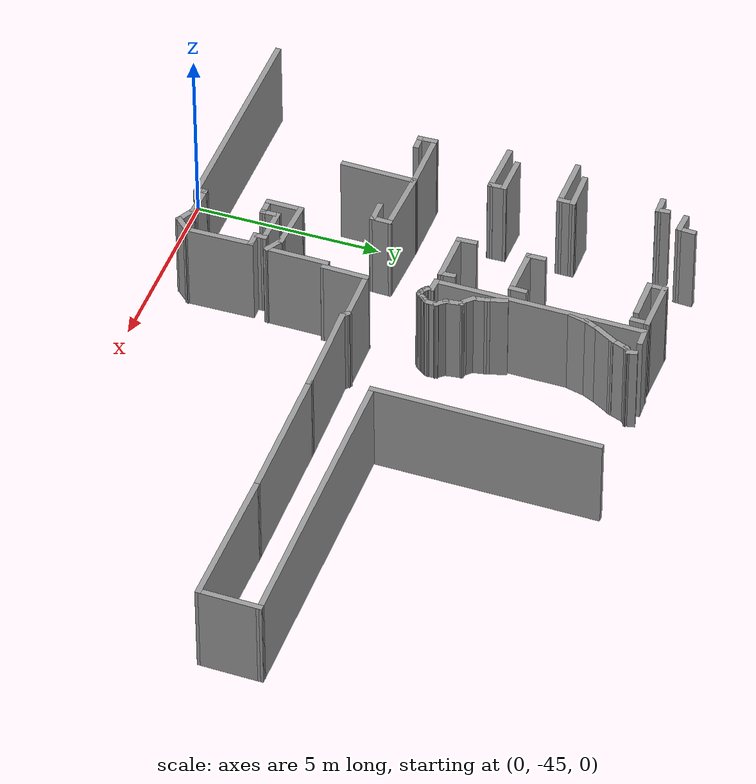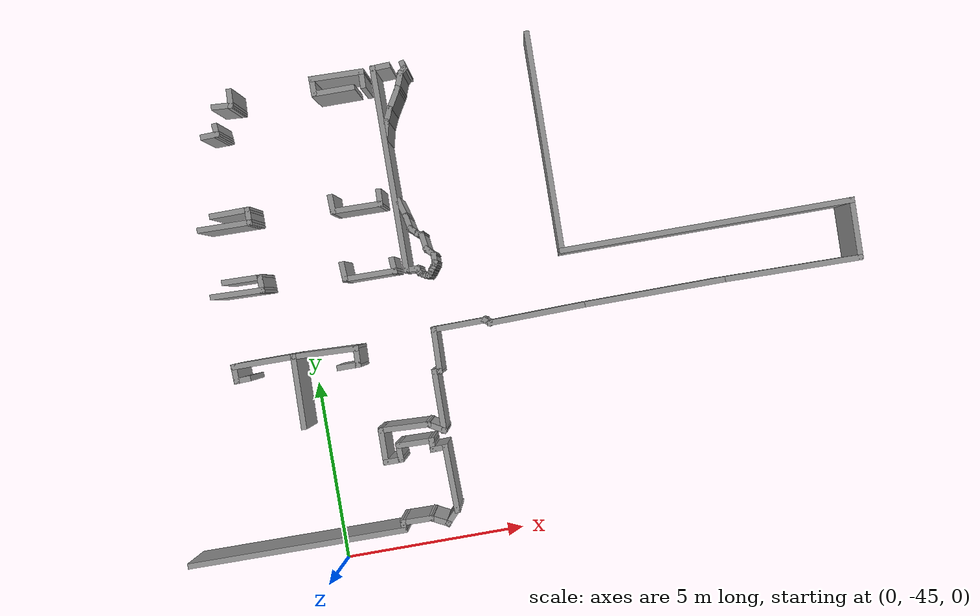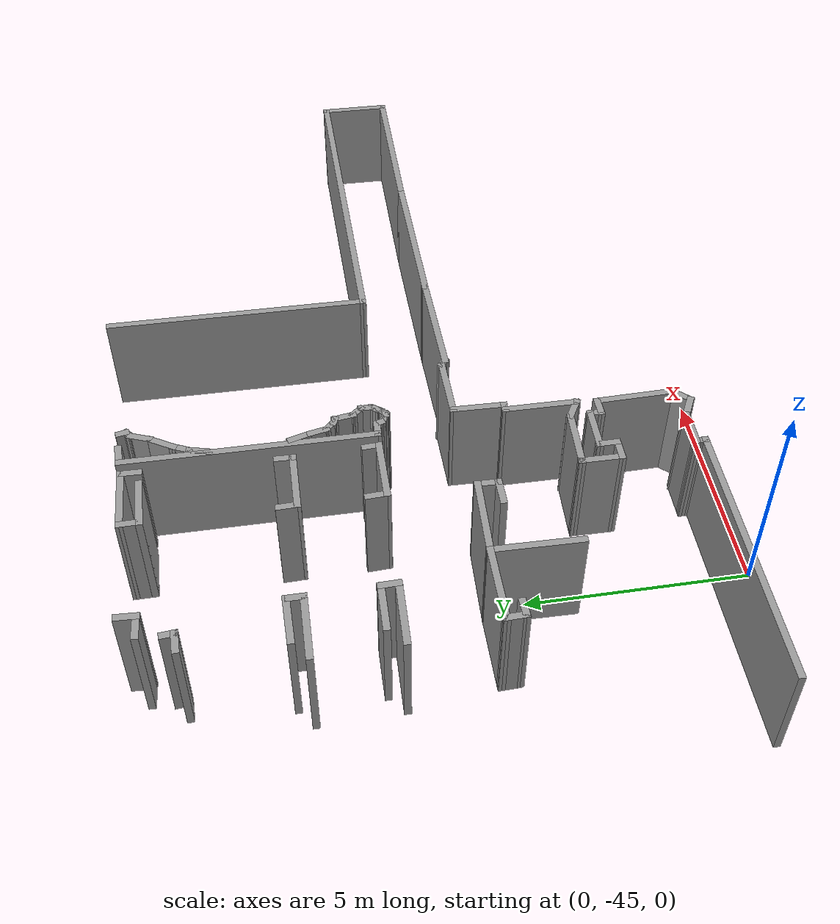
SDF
<sdf version="1.4">
 <model name="3ne_real">
  <pose>-14.229 -33.4428 0 0 -0 0</pose>
  <link name="Wall_100">
   <collision name="Wall_100_Collision">
    <geometry><box><size>0.304128 0.15 2.5</size></box></geometry>
    <pose>0 0 1.25 0 -0 0</pose>
   </collision>
   <visual name="Wall_100_Visual">
    <pose>0 0 1.25 0 -0 0</pose>
    <geometry><box><size>0.304128 0.15 2.5</size></box></geometry>
    <material>
     <script><uri>file://media/materials/scripts/gazebo.material</uri><name>Gazebo/Grey</name></script>
     <ambient>1 1 1 1</ambient>
    </material>
    <meta><layer>0</layer></meta>
   </visual>
   <pose>19.2826 -5.64368 0 0 -0 -0.682317</pose>
  </link>
  <link name="Wall_101">
   <collision name="Wall_101_Collision">
    <geometry><box><size>2.685 0.15 2.5</size></box></geometry>
    <pose>0 0 1.25 0 -0 0</pose>
   </collision>
   <visual name="Wall_101_Visual">
    <pose>0 0 1.25 0 -0 0</pose>
    <geometry><box><size>2.685 0.15 2.5</size></box></geometry>
    <material>
     <script><uri>file://media/materials/scripts/gazebo.material</uri><name>Gazebo/Grey</name></script>
     <ambient>1 1 1 1</ambient>
    </material>
    <meta><layer>0</layer></meta>
   </visual>
   <pose>20.6096 -5.66611 0 0 -0 0.020646</pose>
  </link>
  <link name="Wall_103">
   <collision name="Wall_103_Collision">
    <geometry><box><size>3.99219 0.15 2.5</size></box></geometry>
    <pose>0 0 1.25 0 -0 0</pose>
   </collision>
   <visual name="Wall_103_Visual">
    <pose>0 0 1.25 0 -0 0</pose>
    <geometry><box><size>3.99219 0.15 2.5</size></box></geometry>
    <material>
     <script><uri>file://media/materials/scripts/gazebo.material</uri><name>Gazebo/Grey</name></script>
     <ambient>1 1 1 1</ambient>
    </material>
    <meta><layer>0</layer></meta>
   </visual>
   <pose>23.7979 -5.62656 0 0 -0 0.006965</pose>
  </link>
  <link name="Wall_104">
   <collision name="Wall_104_Collision">
    <geometry><box><size>3.92745 0.15 2.5</size></box></geometry>
    <pose>0 0 1.25 0 -0 0</pose>
   </collision>
   <visual name="Wall_104_Visual">
    <pose>0 0 1.25 0 -0 0</pose>
    <geometry><box><size>3.92745 0.15 2.5</size></box></geometry>
    <material>
     <script><uri>file://media/materials/scripts/gazebo.material</uri><name>Gazebo/Grey</name></script>
     <ambient>1 1 1 1</ambient>
    </material>
    <meta><layer>0</layer></meta>
   </visual>
   <pose>27.6074 -5.63295 0 0 -0 -0.010471</pose>
  </link>
  <link name="Wall_105">
   <collision name="Wall_105_Collision">
    <geometry><box><size>1.71249 0.15 2.5</size></box></geometry>
    <pose>0 0 1.25 0 -0 0</pose>
   </collision>
   <visual name="Wall_105_Visual">
    <pose>0 0 1.25 0 -0 0</pose>
    <geometry><box><size>1.71249 0.15 2.5</size></box></geometry>
    <material>
     <script><uri>file://media/materials/scripts/gazebo.material</uri><name>Gazebo/Grey</name></script>
     <ambient>1 1 1 1</ambient>
    </material>
    <meta><layer>0</layer></meta>
   </visual>
   <pose>29.5108 -4.87162 0 0 -0 1.55181</pose>
  </link>
  <link name="Wall_106">
   <collision name="Wall_106_Collision">
    <geometry><box><size>8.07969 0.15 2.5</size></box></geometry>
    <pose>0 0 1.25 0 -0 0</pose>
   </collision>
   <visual name="Wall_106_Visual">
    <pose>0 0 1.25 0 -0 0</pose>
    <geometry><box><size>8.07969 0.15 2.5</size></box></geometry>
    <material>
     <script><uri>file://media/materials/scripts/gazebo.material</uri><name>Gazebo/Grey</name></script>
     <ambient>1 1 1 1</ambient>
    </material>
    <meta><layer>0</layer></meta>
   </visual>
   <pose>25.5608 -4.09546 0 0 -0 -3.14035</pose>
  </link>
  <link name="Wall_109">
   <collision name="Wall_109_Collision">
    <geometry><box><size>6.07338 0.15 2.5</size></box></geometry>
    <pose>0 0 1.25 0 -0 0</pose>
   </collision>
   <visual name="Wall_109_Visual">
    <pose>0 0 1.25 0 -0 0</pose>
    <geometry><box><size>6.07338 0.15 2.5</size></box></geometry>
    <material>
     <script><uri>file://media/materials/scripts/gazebo.material</uri><name>Gazebo/Grey</name></script>
     <ambient>1 1 1 1</ambient>
    </material>
    <meta><layer>0</layer></meta>
   </visual>
   <pose>21.6246 -1.13886 0 0 -0 1.56113</pose>
  </link>
  <link name="Wall_473">
   <collision name="Wall_473_Collision">
    <geometry><box><size>5.65263 0.15 2.5</size></box></geometry>
    <pose>0 0 1.25 0 -0 0</pose>
   </collision>
   <visual name="Wall_473_Visual">
    <pose>0 0 1.25 0 -0 0</pose>
    <geometry><box><size>5.65263 0.15 2.5</size></box></geometry>
    <material>
     <script><uri>file://media/materials/scripts/gazebo.material</uri><name>Gazebo/Grey</name></script>
     <ambient>1 1 1 1</ambient>
    </material>
    <meta><layer>0</layer></meta>
   </visual>
   <pose>17.3818 -1.14236 0 0 -0 -1.57623</pose>
  </link>
  <link name="Wall_475">
   <collision name="Wall_475_Collision">
    <geometry><box><size>0.449425 0.15 2.5</size></box></geometry>
    <pose>0 0 1.25 0 -0 0</pose>
   </collision>
   <visual name="Wall_475_Visual">
    <pose>0 0 1.25 0 -0 0</pose>
    <geometry><box><size>0.449425 0.15 2.5</size></box></geometry>
    <material>
     <script><uri>file://media/materials/scripts/gazebo.material</uri><name>Gazebo/Grey</name></script>
     <ambient>1 1 1 1</ambient>
    </material>
    <meta><layer>0</layer></meta>
   </visual>
   <pose>17.5164 -3.90111 0 0 -0 -0.049958</pose>
  </link>
  <link name="Wall_476">
   <collision name="Wall_476_Collision">
    <geometry><box><size>0.258856 0.15 2.5</size></box></geometry>
    <pose>0 0 1.25 0 -0 0</pose>
   </collision>
   <visual name="Wall_476_Visual">
    <pose>0 0 1.25 0 -0 0</pose>
    <geometry><box><size>0.258856 0.15 2.5</size></box></geometry>
    <material>
     <script><uri>file://media/materials/scripts/gazebo.material</uri><name>Gazebo/Grey</name></script>
     <ambient>1 1 1 1</ambient>
    </material>
    <meta><layer>0</layer></meta>
   </visual>
   <pose>17.6809 -3.96092 0 0 -0 -1.2925</pose>
  </link>
  <link name="Wall_477">
   <collision name="Wall_477_Collision">
    <geometry><box><size>0.213438 0.15 2.5</size></box></geometry>
    <pose>0 0 1.25 0 -0 0</pose>
   </collision>
   <visual name="Wall_477_Visual">
    <pose>0 0 1.25 0 -0 0</pose>
    <geometry><box><size>0.213438 0.15 2.5</size></box></geometry>
    <material>
     <script><uri>file://media/materials/scripts/gazebo.material</uri><name>Gazebo/Grey</name></script>
     <ambient>1 1 1 1</ambient>
    </material>
    <meta><layer>0</layer></meta>
   </visual>
   <pose>17.7182 -4.03569 0 0 -0 -0.785398</pose>
  </link>
  <link name="Wall_478">
   <collision name="Wall_478_Collision">
    <geometry><box><size>0.21687 0.15 2.5</size></box></geometry>
    <pose>0 0 1.25 0 -0 0</pose>
   </collision>
   <visual name="Wall_478_Visual">
    <pose>0 0 1.25 0 -0 0</pose>
    <geometry><box><size>0.21687 0.15 2.5</size></box></geometry>
    <material>
     <script><uri>file://media/materials/scripts/gazebo.material</uri><name>Gazebo/Grey</name></script>
     <ambient>1 1 1 1</ambient>
    </material>
    <meta><layer>0</layer></meta>
   </visual>
   <pose>17.7706 -4.07307 0 0 -0 -0.463648</pose>
  </link>
  <link name="Wall_479">
   <collision name="Wall_479_Collision">
    <geometry><box><size>0.203912 0.15 2.5</size></box></geometry>
    <pose>0 0 1.25 0 -0 0</pose>
   </collision>
   <visual name="Wall_479_Visual">
    <pose>0 0 1.25 0 -0 0</pose>
    <geometry><box><size>0.203912 0.15 2.5</size></box></geometry>
    <material>
     <script><uri>file://media/materials/scripts/gazebo.material</uri><name>Gazebo/Grey</name></script>
     <ambient>1 1 1 1</ambient>
    </material>
    <meta><layer>0</layer></meta>
   </visual>
   <pose>17.8229 -4.10297 0 0 -0 -0.588003</pose>
  </link>
  <link name="Wall_480">
   <collision name="Wall_480_Collision">
    <geometry><box><size>0.197284 0.15 2.5</size></box></geometry>
    <pose>0 0 1.25 0 -0 0</pose>
   </collision>
   <visual name="Wall_480_Visual">
    <pose>0 0 1.25 0 -0 0</pose>
    <geometry><box><size>0.197284 0.15 2.5</size></box></geometry>
    <material>
     <script><uri>file://media/materials/scripts/gazebo.material</uri><name>Gazebo/Grey</name></script>
     <ambient>1 1 1 1</ambient>
    </material>
    <meta><layer>0</layer></meta>
   </visual>
   <pose>17.8678 -4.1254 0 0 -0 -0.321751</pose>
  </link>
  <link name="Wall_481">
   <collision name="Wall_481_Collision">
    <geometry><box><size>0.194858 0.15 2.5</size></box></geometry>
    <pose>0 0 1.25 0 -0 0</pose>
   </collision>
   <visual name="Wall_481_Visual">
    <pose>0 0 1.25 0 -0 0</pose>
    <geometry><box><size>0.194858 0.15 2.5</size></box></geometry>
    <material>
     <script><uri>file://media/materials/scripts/gazebo.material</uri><name>Gazebo/Grey</name></script>
     <ambient>1 1 1 1</ambient>
    </material>
    <meta><layer>0</layer></meta>
   </visual>
   <pose>17.9126 -4.13288 0 0 -0 0</pose>
  </link>
  <link name="Wall_482">
   <collision name="Wall_482_Collision">
    <geometry><box><size>0.192292 0.15 2.5</size></box></geometry>
    <pose>0 0 1.25 0 -0 0</pose>
   </collision>
   <visual name="Wall_482_Visual">
    <pose>0 0 1.25 0 -0 0</pose>
    <geometry><box><size>0.192292 0.15 2.5</size></box></geometry>
    <material>
     <script><uri>file://media/materials/scripts/gazebo.material</uri><name>Gazebo/Grey</name></script>
     <ambient>1 1 1 1</ambient>
    </material>
    <meta><layer>0</layer></meta>
   </visual>
   <pose>17.95 -4.11793 0 0 -0 0.785398</pose>
  </link>
  <link name="Wall_483">
   <collision name="Wall_483_Collision">
    <geometry><box><size>0.234585 0.15 2.5</size></box></geometry>
    <pose>0 0 1.25 0 -0 0</pose>
   </collision>
   <visual name="Wall_483_Visual">
    <pose>0 0 1.25 0 -0 0</pose>
    <geometry><box><size>0.234585 0.15 2.5</size></box></geometry>
    <material>
     <script><uri>file://media/materials/scripts/gazebo.material</uri><name>Gazebo/Grey</name></script>
     <ambient>1 1 1 1</ambient>
    </material>
    <meta><layer>0</layer></meta>
   </visual>
   <pose>17.9949 -4.07307 0 0 -0 0.785398</pose>
  </link>
  <link name="Wall_484">
   <collision name="Wall_484_Collision">
    <geometry><box><size>0.237188 0.15 2.5</size></box></geometry>
    <pose>0 0 1.25 0 -0 0</pose>
   </collision>
   <visual name="Wall_484_Visual">
    <pose>0 0 1.25 0 -0 0</pose>
    <geometry><box><size>0.237188 0.15 2.5</size></box></geometry>
    <material>
     <script><uri>file://media/materials/scripts/gazebo.material</uri><name>Gazebo/Grey</name></script>
     <ambient>1 1 1 1</ambient>
    </material>
    <meta><layer>0</layer></meta>
   </visual>
   <pose>18.0472 -4.00578 0 0 -0 1.03038</pose>
  </link>
  <link name="Wall_485">
   <collision name="Wall_485_Collision">
    <geometry><box><size>0.213438 0.15 2.5</size></box></geometry>
    <pose>0 0 1.25 0 -0 0</pose>
   </collision>
   <visual name="Wall_485_Visual">
    <pose>0 0 1.25 0 -0 0</pose>
    <geometry><box><size>0.213438 0.15 2.5</size></box></geometry>
    <material>
     <script><uri>file://media/materials/scripts/gazebo.material</uri><name>Gazebo/Grey</name></script>
     <ambient>1 1 1 1</ambient>
    </material>
    <meta><layer>0</layer></meta>
   </visual>
   <pose>18.0921 -3.94597 0 0 -0 0.785398</pose>
  </link>
  <link name="Wall_486">
   <collision name="Wall_486_Collision">
    <geometry><box><size>0.250305 0.15 2.5</size></box></geometry>
    <pose>0 0 1.25 0 -0 0</pose>
   </collision>
   <visual name="Wall_486_Visual">
    <pose>0 0 1.25 0 -0 0</pose>
    <geometry><box><size>0.250305 0.15 2.5</size></box></geometry>
    <material>
     <script><uri>file://media/materials/scripts/gazebo.material</uri><name>Gazebo/Grey</name></script>
     <ambient>1 1 1 1</ambient>
    </material>
    <meta><layer>0</layer></meta>
   </visual>
   <pose>18.1369 -3.87868 0 0 -0 1.10715</pose>
  </link>
  <link name="Wall_487">
   <collision name="Wall_487_Collision">
    <geometry><box><size>0.359336 0.15 2.5</size></box></geometry>
    <pose>0 0 1.25 0 -0 0</pose>
   </collision>
   <visual name="Wall_487_Visual">
    <pose>0 0 1.25 0 -0 0</pose>
    <geometry><box><size>0.359336 0.15 2.5</size></box></geometry>
    <material>
     <script><uri>file://media/materials/scripts/gazebo.material</uri><name>Gazebo/Grey</name></script>
     <ambient>1 1 1 1</ambient>
    </material>
    <meta><layer>0</layer></meta>
   </visual>
   <pose>18.1593 -3.72916 0 0 -0 1.5708</pose>
  </link>
  <link name="Wall_488">
   <collision name="Wall_488_Collision">
    <geometry><box><size>0.404633 0.15 2.5</size></box></geometry>
    <pose>0 0 1.25 0 -0 0</pose>
   </collision>
   <visual name="Wall_488_Visual">
    <pose>0 0 1.25 0 -0 0</pose>
    <geometry><box><size>0.404633 0.15 2.5</size></box></geometry>
    <material>
     <script><uri>file://media/materials/scripts/gazebo.material</uri><name>Gazebo/Grey</name></script>
     <ambient>1 1 1 1</ambient>
    </material>
    <meta><layer>0</layer></meta>
   </visual>
   <pose>18.0771 -3.5273 0 0 -0 2.27305</pose>
  </link>
  <link name="Wall_489">
   <collision name="Wall_489_Collision">
    <geometry><box><size>0.558126 0.15 2.5</size></box></geometry>
    <pose>0 0 1.25 0 -0 0</pose>
   </collision>
   <visual name="Wall_489_Visual">
    <pose>0 0 1.25 0 -0 0</pose>
    <geometry><box><size>0.558126 0.15 2.5</size></box></geometry>
    <material>
     <script><uri>file://media/materials/scripts/gazebo.material</uri><name>Gazebo/Grey</name></script>
     <ambient>1 1 1 1</ambient>
    </material>
    <meta><layer>0</layer></meta>
   </visual>
   <pose>17.965 -3.22825 0 0 -0 1.71788</pose>
  </link>
  <link name="Wall_490">
   <collision name="Wall_490_Collision">
    <geometry><box><size>0.263875 0.15 2.5</size></box></geometry>
    <pose>0 0 1.25 0 -0 0</pose>
   </collision>
   <visual name="Wall_490_Visual">
    <pose>0 0 1.25 0 -0 0</pose>
    <geometry><box><size>0.263875 0.15 2.5</size></box></geometry>
    <material>
     <script><uri>file://media/materials/scripts/gazebo.material</uri><name>Gazebo/Grey</name></script>
     <ambient>1 1 1 1</ambient>
    </material>
    <meta><layer>0</layer></meta>
   </visual>
   <pose>17.8827 -3.00396 0 0 -0 2.7367</pose>
  </link>
  <link name="Wall_491">
   <collision name="Wall_491_Collision">
    <geometry><box><size>0.382607 0.15 2.5</size></box></geometry>
    <pose>0 0 1.25 0 -0 0</pose>
   </collision>
   <visual name="Wall_491_Visual">
    <pose>0 0 1.25 0 -0 0</pose>
    <geometry><box><size>0.382607 0.15 2.5</size></box></geometry>
    <material>
     <script><uri>file://media/materials/scripts/gazebo.material</uri><name>Gazebo/Grey</name></script>
     <ambient>1 1 1 1</ambient>
    </material>
    <meta><layer>0</layer></meta>
   </visual>
   <pose>17.7482 -2.89929 0 0 -0 2.35619</pose>
  </link>
  <link name="Wall_492">
   <collision name="Wall_492_Collision">
    <geometry><box><size>0.516567 0.15 2.5</size></box></geometry>
    <pose>0 0 1.25 0 -0 0</pose>
   </collision>
   <visual name="Wall_492_Visual">
    <pose>0 0 1.25 0 -0 0</pose>
    <geometry><box><size>0.516567 0.15 2.5</size></box></geometry>
    <material>
     <script><uri>file://media/materials/scripts/gazebo.material</uri><name>Gazebo/Grey</name></script>
     <ambient>1 1 1 1</ambient>
    </material>
    <meta><layer>0</layer></meta>
   </visual>
   <pose>17.6285 -2.63762 0 0 -0 1.77619</pose>
  </link>
  <link name="Wall_493">
   <collision name="Wall_493_Collision">
    <geometry><box><size>0.599821 0.15 2.5</size></box></geometry>
    <pose>0 0 1.25 0 -0 0</pose>
   </collision>
   <visual name="Wall_493_Visual">
    <pose>0 0 1.25 0 -0 0</pose>
    <geometry><box><size>0.599821 0.15 2.5</size></box></geometry>
    <material>
     <script><uri>file://media/materials/scripts/gazebo.material</uri><name>Gazebo/Grey</name></script>
     <ambient>1 1 1 1</ambient>
    </material>
    <meta><layer>0</layer></meta>
   </visual>
   <pose>17.5313 -2.24138 0 0 -0 1.83996</pose>
  </link>
  <link name="Wall_495">
   <collision name="Wall_495_Collision">
    <geometry><box><size>0.581557 0.15 2.5</size></box></geometry>
    <pose>0 0 1.25 0 -0 0</pose>
   </collision>
   <visual name="Wall_495_Visual">
    <pose>0 0 1.25 0 -0 0</pose>
    <geometry><box><size>0.581557 0.15 2.5</size></box></geometry>
    <material>
     <script><uri>file://media/materials/scripts/gazebo.material</uri><name>Gazebo/Grey</name></script>
     <ambient>1 1 1 1</ambient>
    </material>
    <meta><layer>0</layer></meta>
   </visual>
   <pose>17.4641 -0.080729 0 0 -0 1.32582</pose>
  </link>
  <link name="Wall_496">
   <collision name="Wall_496_Collision">
    <geometry><box><size>0.511345 0.15 2.5</size></box></geometry>
    <pose>0 0 1.25 0 -0 0</pose>
   </collision>
   <visual name="Wall_496_Visual">
    <pose>0 0 1.25 0 -0 0</pose>
    <geometry><box><size>0.511345 0.15 2.5</size></box></geometry>
    <material>
     <script><uri>file://media/materials/scripts/gazebo.material</uri><name>Gazebo/Grey</name></script>
     <ambient>1 1 1 1</ambient>
    </material>
    <meta><layer>0</layer></meta>
   </visual>
   <pose>17.5911 0.293084 0 0 -0 1.14417</pose>
  </link>
  <link name="Wall_497">
   <collision name="Wall_497_Collision">
    <geometry><box><size>0.739822 0.15 2.5</size></box></geometry>
    <pose>0 0 1.25 0 -0 0</pose>
   </collision>
   <visual name="Wall_497_Visual">
    <pose>0 0 1.25 0 -0 0</pose>
    <geometry><box><size>0.739822 0.15 2.5</size></box></geometry>
    <material>
     <script><uri>file://media/materials/scripts/gazebo.material</uri><name>Gazebo/Grey</name></script>
     <ambient>1 1 1 1</ambient>
    </material>
    <meta><layer>0</layer></meta>
   </visual>
   <pose>17.8154 0.711755 0 0 -0 1.03907</pose>
  </link>
  <link name="Wall_498">
   <collision name="Wall_498_Collision">
    <geometry><box><size>0.56653 0.15 2.5</size></box></geometry>
    <pose>0 0 1.25 0 -0 0</pose>
   </collision>
   <visual name="Wall_498_Visual">
    <pose>0 0 1.25 0 -0 0</pose>
    <geometry><box><size>0.56653 0.15 2.5</size></box></geometry>
    <material>
     <script><uri>file://media/materials/scripts/gazebo.material</uri><name>Gazebo/Grey</name></script>
     <ambient>1 1 1 1</ambient>
    </material>
    <meta><layer>0</layer></meta>
   </visual>
   <pose>18.0397 1.16033 0 0 -0 1.20362</pose>
  </link>
  <link name="Wall_499">
   <collision name="Wall_499_Collision">
    <geometry><box><size>0.308948 0.15 2.5</size></box></geometry>
    <pose>0 0 1.25 0 -0 0</pose>
   </collision>
   <visual name="Wall_499_Visual">
    <pose>0 0 1.25 0 -0 0</pose>
    <geometry><box><size>0.308948 0.15 2.5</size></box></geometry>
    <material>
     <script><uri>file://media/materials/scripts/gazebo.material</uri><name>Gazebo/Grey</name></script>
     <ambient>1 1 1 1</ambient>
    </material>
    <meta><layer>0</layer></meta>
   </visual>
   <pose>18.1743 1.40705 0 0 -0 0.71883</pose>
  </link>
  <link name="Wall_500">
   <collision name="Wall_500_Collision">
    <geometry><box><size>0.302487 0.15 2.5</size></box></geometry>
    <pose>0 0 1.25 0 -0 0</pose>
   </collision>
   <visual name="Wall_500_Visual">
    <pose>0 0 1.25 0 -0 0</pose>
    <geometry><box><size>0.302487 0.15 2.5</size></box></geometry>
    <material>
     <script><uri>file://media/materials/scripts/gazebo.material</uri><name>Gazebo/Grey</name></script>
     <ambient>1 1 1 1</ambient>
    </material>
    <meta><layer>0</layer></meta>
   </visual>
   <pose>18.2192 1.53415 0 0 -0 1.76819</pose>
  </link>
  <link name="Wall_506">
   <collision name="Wall_506_Collision">
    <geometry><box><size>0.525009 0.15 2.5</size></box></geometry>
    <pose>0 0 1.25 0 -0 0</pose>
   </collision>
   <visual name="Wall_506_Visual">
    <pose>0 0 1.25 0 -0 0</pose>
    <geometry><box><size>0.525009 0.15 2.5</size></box></geometry>
    <material>
     <script><uri>file://media/materials/scripts/gazebo.material</uri><name>Gazebo/Grey</name></script>
     <ambient>1 1 1 1</ambient>
    </material>
    <meta><layer>0</layer></meta>
   </visual>
   <pose>17.6136 1.61638 0 0 -0 -3.10161</pose>
  </link>
  <link name="Wall_544">
   <collision name="Wall_544_Collision">
    <geometry><box><size>2.06243 0.15 2.5</size></box></geometry>
    <pose>0 0 1.25 0 -0 0</pose>
   </collision>
   <visual name="Wall_544_Visual">
    <pose>0 0 1.25 0 -0 0</pose>
    <geometry><box><size>2.06243 0.15 2.5</size></box></geometry>
    <material>
     <script><uri>file://media/materials/scripts/gazebo.material</uri><name>Gazebo/Grey</name></script>
     <ambient>1 1 1 1</ambient>
    </material>
    <meta><layer>0</layer></meta>
   </visual>
   <pose>13.9418 -6.64066 0 0 -0 1.55039</pose>
  </link>
  <link name="Wall_545">
   <collision name="Wall_545_Collision">
    <geometry><box><size>1.77533 0.15 2.5</size></box></geometry>
    <pose>0 0 1.25 0 -0 0</pose>
   </collision>
   <visual name="Wall_545_Visual">
    <pose>0 0 1.25 0 -0 0</pose>
    <geometry><box><size>1.77533 0.15 2.5</size></box></geometry>
    <material>
     <script><uri>file://media/materials/scripts/gazebo.material</uri><name>Gazebo/Grey</name></script>
     <ambient>1 1 1 1</ambient>
    </material>
    <meta><layer>0</layer></meta>
   </visual>
   <pose>13.1487 -5.685 0 0 -0 3.14159</pose>
  </link>
  <link name="Wall_546">
   <collision name="Wall_546_Collision">
    <geometry><box><size>0.540284 0.15 2.5</size></box></geometry>
    <pose>0 0 1.25 0 -0 0</pose>
   </collision>
   <visual name="Wall_546_Visual">
    <pose>0 0 1.25 0 -0 0</pose>
    <geometry><box><size>0.540284 0.15 2.5</size></box></geometry>
    <material>
     <script><uri>file://media/materials/scripts/gazebo.material</uri><name>Gazebo/Grey</name></script>
     <ambient>1 1 1 1</ambient>
    </material>
    <meta><layer>0</layer></meta>
   </visual>
   <pose>12.3426 -5.88003 0 0 -0 -1.53747</pose>
  </link>
  <link name="Wall_547">
   <collision name="Wall_547_Collision">
    <geometry><box><size>0.462054 0.15 2.5</size></box></geometry>
    <pose>0 0 1.25 0 -0 0</pose>
   </collision>
   <visual name="Wall_547_Visual">
    <pose>0 0 1.25 0 -0 0</pose>
    <geometry><box><size>0.462054 0.15 2.5</size></box></geometry>
    <material>
     <script><uri>file://media/materials/scripts/gazebo.material</uri><name>Gazebo/Grey</name></script>
     <ambient>1 1 1 1</ambient>
    </material>
    <meta><layer>0</layer></meta>
   </visual>
   <pose>12.5051 -6.06856 0 0 -0 0.041643</pose>
  </link>
  <link name="Wall_549">
   <collision name="Wall_549_Collision">
    <geometry><box><size>1.85453 0.15 2.5</size></box></geometry>
    <pose>0 0 1.25 0 -0 0</pose>
   </collision>
   <visual name="Wall_549_Visual">
    <pose>0 0 1.25 0 -0 0</pose>
    <geometry><box><size>1.85453 0.15 2.5</size></box></geometry>
    <material>
     <script><uri>file://media/materials/scripts/gazebo.material</uri><name>Gazebo/Grey</name></script>
     <ambient>1 1 1 1</ambient>
    </material>
    <meta><layer>0</layer></meta>
   </visual>
   <pose>14.813 -5.71751 0 0 -0 -0.038149</pose>
  </link>
  <link name="Wall_550">
   <collision name="Wall_550_Collision">
    <geometry><box><size>0.592267 0.15 2.5</size></box></geometry>
    <pose>0 0 1.25 0 -0 0</pose>
   </collision>
   <visual name="Wall_550_Visual">
    <pose>0 0 1.25 0 -0 0</pose>
    <geometry><box><size>0.592267 0.15 2.5</size></box></geometry>
    <material>
     <script><uri>file://media/materials/scripts/gazebo.material</uri><name>Gazebo/Grey</name></script>
     <ambient>1 1 1 1</ambient>
    </material>
    <meta><layer>0</layer></meta>
   </visual>
   <pose>15.6581 -5.97105 0 0 -0 -1.6002</pose>
  </link>
  <link name="Wall_551">
   <collision name="Wall_551_Collision">
    <geometry><box><size>0.657087 0.15 2.5</size></box></geometry>
    <pose>0 0 1.25 0 -0 0</pose>
   </collision>
   <visual name="Wall_551_Visual">
    <pose>0 0 1.25 0 -0 0</pose>
    <geometry><box><size>0.657087 0.15 2.5</size></box></geometry>
    <material>
     <script><uri>file://media/materials/scripts/gazebo.material</uri><name>Gazebo/Grey</name></script>
     <ambient>1 1 1 1</ambient>
    </material>
    <meta><layer>0</layer></meta>
   </visual>
   <pose>15.3981 -6.19208 0 0 -0 3.14159</pose>
  </link>
  <link name="Wall_604">
   <collision name="Wall_604_Collision">
    <geometry><box><size>1.49707 0.15 2.5</size></box></geometry>
    <pose>0 0 1.25 0 -0 0</pose>
   </collision>
   <visual name="Wall_604_Visual">
    <pose>0 0 1.25 0 -0 0</pose>
    <geometry><box><size>1.49707 0.15 2.5</size></box></geometry>
    <material>
     <script><uri>file://media/materials/scripts/gazebo.material</uri><name>Gazebo/Grey</name></script>
     <ambient>1 1 1 1</ambient>
    </material>
    <meta><layer>0</layer></meta>
   </visual>
   <pose>12.7737 -3.75247 0 0 -0 -0.029189</pose>
  </link>
  <link name="Wall_605">
   <collision name="Wall_605_Collision">
    <geometry><box><size>0.504073 0.15 2.5</size></box></geometry>
    <pose>0 0 1.25 0 -0 0</pose>
   </collision>
   <visual name="Wall_605_Visual">
    <pose>0 0 1.25 0 -0 0</pose>
    <geometry><box><size>0.504073 0.15 2.5</size></box></geometry>
    <material>
     <script><uri>file://media/materials/scripts/gazebo.material</uri><name>Gazebo/Grey</name></script>
     <ambient>1 1 1 1</ambient>
    </material>
    <meta><layer>0</layer></meta>
   </visual>
   <pose>13.4422 -3.59516 0 0 -0 1.59857</pose>
  </link>
  <link name="Wall_606">
   <collision name="Wall_606_Collision">
    <geometry><box><size>1.11354 0.15 2.5</size></box></geometry>
    <pose>0 0 1.25 0 -0 0</pose>
   </collision>
   <visual name="Wall_606_Visual">
    <pose>0 0 1.25 0 -0 0</pose>
    <geometry><box><size>1.11354 0.15 2.5</size></box></geometry>
    <material>
     <script><uri>file://media/materials/scripts/gazebo.material</uri><name>Gazebo/Grey</name></script>
     <ambient>1 1 1 1</ambient>
    </material>
    <meta><layer>0</layer></meta>
   </visual>
   <pose>12.9556 -3.40836 0 0 -0 3.12119</pose>
  </link>
  <link name="Wall_608">
   <collision name="Wall_608_Collision">
    <geometry><box><size>1.5069 0.15 2.5</size></box></geometry>
    <pose>0 0 1.25 0 -0 0</pose>
   </collision>
   <visual name="Wall_608_Visual">
    <pose>0 0 1.25 0 -0 0</pose>
    <geometry><box><size>1.5069 0.15 2.5</size></box></geometry>
    <material>
     <script><uri>file://media/materials/scripts/gazebo.material</uri><name>Gazebo/Grey</name></script>
     <ambient>1 1 1 1</ambient>
    </material>
    <meta><layer>0</layer></meta>
   </visual>
   <pose>12.7393 -1.90414 0 0 -0 -0.014492</pose>
  </link>
  <link name="Wall_609">
   <collision name="Wall_609_Collision">
    <geometry><box><size>0.494105 0.15 2.5</size></box></geometry>
    <pose>0 0 1.25 0 -0 0</pose>
   </collision>
   <visual name="Wall_609_Visual">
    <pose>0 0 1.25 0 -0 0</pose>
    <geometry><box><size>0.494105 0.15 2.5</size></box></geometry>
    <material>
     <script><uri>file://media/materials/scripts/gazebo.material</uri><name>Gazebo/Grey</name></script>
     <ambient>1 1 1 1</ambient>
    </material>
    <meta><layer>0</layer></meta>
   </visual>
   <pose>13.4177 -1.74191 0 0 -0 1.5708</pose>
  </link>
  <link name="Wall_610">
   <collision name="Wall_610_Collision">
    <geometry><box><size>1.11354 0.15 2.5</size></box></geometry>
    <pose>0 0 1.25 0 -0 0</pose>
   </collision>
   <visual name="Wall_610_Visual">
    <pose>0 0 1.25 0 -0 0</pose>
    <geometry><box><size>1.11354 0.15 2.5</size></box></geometry>
    <material>
     <script><uri>file://media/materials/scripts/gazebo.material</uri><name>Gazebo/Grey</name></script>
     <ambient>1 1 1 1</ambient>
    </material>
    <meta><layer>0</layer></meta>
   </visual>
   <pose>12.9359 -1.57478 0 0 -0 -3.13139</pose>
  </link>
  <link name="Wall_612">
   <collision name="Wall_612_Collision">
    <geometry><box><size>0.553573 0.15 2.5</size></box></geometry>
    <pose>0 0 1.25 0 -0 0</pose>
   </collision>
   <visual name="Wall_612_Visual">
    <pose>0 0 1.25 0 -0 0</pose>
    <geometry><box><size>0.553573 0.15 2.5</size></box></geometry>
    <material>
     <script><uri>file://media/materials/scripts/gazebo.material</uri><name>Gazebo/Grey</name></script>
     <ambient>1 1 1 1</ambient>
    </material>
    <meta><layer>0</layer></meta>
   </visual>
   <pose>15.6888 -3.65907 0 0 -0 -1.52205</pose>
  </link>
  <link name="Wall_613">
   <collision name="Wall_613_Collision">
    <geometry><box><size>1.49696 0.15 2.5</size></box></geometry>
    <pose>0 0 1.25 0 -0 0</pose>
   </collision>
   <visual name="Wall_613_Visual">
    <pose>0 0 1.25 0 -0 0</pose>
    <geometry><box><size>1.49696 0.15 2.5</size></box></geometry>
    <material>
     <script><uri>file://media/materials/scripts/gazebo.material</uri><name>Gazebo/Grey</name></script>
     <ambient>1 1 1 1</ambient>
    </material>
    <meta><layer>0</layer></meta>
   </visual>
   <pose>16.3721 -3.86553 0 0 -0 -0.007299</pose>
  </link>
  <link name="Wall_614">
   <collision name="Wall_614_Collision">
    <geometry><box><size>0.455412 0.15 2.5</size></box></geometry>
    <pose>0 0 1.25 0 -0 0</pose>
   </collision>
   <visual name="Wall_614_Visual">
    <pose>0 0 1.25 0 -0 0</pose>
    <geometry><box><size>0.455412 0.15 2.5</size></box></geometry>
    <material>
     <script><uri>file://media/materials/scripts/gazebo.material</uri><name>Gazebo/Grey</name></script>
     <ambient>1 1 1 1</ambient>
    </material>
    <meta><layer>0</layer></meta>
   </visual>
   <pose>17.0357 -3.71806 0 0 -0 1.63522</pose>
  </link>
  <link name="Wall_616">
   <collision name="Wall_616_Collision">
    <geometry><box><size>0.533557 0.15 2.5</size></box></geometry>
    <pose>0 0 1.25 0 -0 0</pose>
   </collision>
   <visual name="Wall_616_Visual">
    <pose>0 0 1.25 0 -0 0</pose>
    <geometry><box><size>0.533557 0.15 2.5</size></box></geometry>
    <material>
     <script><uri>file://media/materials/scripts/gazebo.material</uri><name>Gazebo/Grey</name></script>
     <ambient>1 1 1 1</ambient>
    </material>
    <meta><layer>0</layer></meta>
   </visual>
   <pose>15.6838 -1.81073 0 0 -0 -1.54516</pose>
  </link>
  <link name="Wall_617">
   <collision name="Wall_617_Collision">
    <geometry><box><size>1.43808 0.15 2.5</size></box></geometry>
    <pose>0 0 1.25 0 -0 0</pose>
   </collision>
   <visual name="Wall_617_Visual">
    <pose>0 0 1.25 0 -0 0</pose>
    <geometry><box><size>1.43808 0.15 2.5</size></box></geometry>
    <material>
     <script><uri>file://media/materials/scripts/gazebo.material</uri><name>Gazebo/Grey</name></script>
     <ambient>1 1 1 1</ambient>
    </material>
    <meta><layer>0</layer></meta>
   </visual>
   <pose>16.3327 -2.01228 0 0 -0 -0.015266</pose>
  </link>
  <link name="Wall_618">
   <collision name="Wall_618_Collision">
    <geometry><box><size>0.484851 0.15 2.5</size></box></geometry>
    <pose>0 0 1.25 0 -0 0</pose>
   </collision>
   <visual name="Wall_618_Visual">
    <pose>0 0 1.25 0 -0 0</pose>
    <geometry><box><size>0.484851 0.15 2.5</size></box></geometry>
    <material>
     <script><uri>file://media/materials/scripts/gazebo.material</uri><name>Gazebo/Grey</name></script>
     <ambient>1 1 1 1</ambient>
    </material>
    <meta><layer>0</layer></meta>
   </visual>
   <pose>16.9816 -1.85498 0 0 -0 1.54139</pose>
  </link>
  <link name="Wall_620">
   <collision name="Wall_620_Collision">
    <geometry><box><size>1.49725 0.15 2.5</size></box></geometry>
    <pose>0 0 1.25 0 -0 0</pose>
   </collision>
   <visual name="Wall_620_Visual">
    <pose>0 0 1.25 0 -0 0</pose>
    <geometry><box><size>1.49725 0.15 2.5</size></box></geometry>
    <material>
     <script><uri>file://media/materials/scripts/gazebo.material</uri><name>Gazebo/Grey</name></script>
     <ambient>1 1 1 1</ambient>
    </material>
    <meta><layer>0</layer></meta>
   </visual>
   <pose>16.4015 1.59099 0 0 -0 -0.021894</pose>
  </link>
  <link name="Wall_621">
   <collision name="Wall_621_Collision">
    <geometry><box><size>0.523729 0.15 2.5</size></box></geometry>
    <pose>0 0 1.25 0 -0 0</pose>
   </collision>
   <visual name="Wall_621_Visual">
    <pose>0 0 1.25 0 -0 0</pose>
    <geometry><box><size>0.523729 0.15 2.5</size></box></geometry>
    <material>
     <script><uri>file://media/materials/scripts/gazebo.material</uri><name>Gazebo/Grey</name></script>
     <ambient>1 1 1 1</ambient>
    </material>
    <meta><layer>0</layer></meta>
   </visual>
   <pose>17.0701 1.38944 0 0 -0 -1.59711</pose>
  </link>
  <link name="Wall_623">
   <collision name="Wall_623_Collision">
    <geometry><box><size>0.553094 0.15 2.5</size></box></geometry>
    <pose>0 0 1.25 0 -0 0</pose>
   </collision>
   <visual name="Wall_623_Visual">
    <pose>0 0 1.25 0 -0 0</pose>
    <geometry><box><size>0.553094 0.15 2.5</size></box></geometry>
    <material>
     <script><uri>file://media/materials/scripts/gazebo.material</uri><name>Gazebo/Grey</name></script>
     <ambient>1 1 1 1</ambient>
    </material>
    <meta><layer>0</layer></meta>
   </visual>
   <pose>15.7281 1.40419 0 0 -0 -1.5708</pose>
  </link>
  <link name="Wall_624">
   <collision name="Wall_624_Collision">
    <geometry><box><size>1.18231 0.15 2.5</size></box></geometry>
    <pose>0 0 1.25 0 -0 0</pose>
   </collision>
   <visual name="Wall_624_Visual">
    <pose>0 0 1.25 0 -0 0</pose>
    <geometry><box><size>1.18231 0.15 2.5</size></box></geometry>
    <material>
     <script><uri>file://media/materials/scripts/gazebo.material</uri><name>Gazebo/Grey</name></script>
     <ambient>1 1 1 1</ambient>
    </material>
    <meta><layer>0</layer></meta>
   </visual>
   <pose>16.2442 1.20264 0 0 -0 0</pose>
  </link>
  <link name="Wall_627">
   <collision name="Wall_627_Collision">
    <geometry><box><size>0.524762 0.15 2.5</size></box></geometry>
    <pose>0 0 1.25 0 -0 0</pose>
   </collision>
   <visual name="Wall_627_Visual">
    <pose>0 0 1.25 0 -0 0</pose>
    <geometry><box><size>0.524762 0.15 2.5</size></box></geometry>
    <material>
     <script><uri>file://media/materials/scripts/gazebo.material</uri><name>Gazebo/Grey</name></script>
     <ambient>1 1 1 1</ambient>
    </material>
    <meta><layer>0</layer></meta>
   </visual>
   <pose>13.4668 1.46809 0 0 -0 -1.62338</pose>
  </link>
  <link name="Wall_628">
   <collision name="Wall_628_Collision">
    <geometry><box><size>0.603212 0.15 2.5</size></box></geometry>
    <pose>0 0 1.25 0 -0 0</pose>
   </collision>
   <visual name="Wall_628_Visual">
    <pose>0 0 1.25 0 -0 0</pose>
    <geometry><box><size>0.603212 0.15 2.5</size></box></geometry>
    <material>
     <script><uri>file://media/materials/scripts/gazebo.material</uri><name>Gazebo/Grey</name></script>
     <ambient>1 1 1 1</ambient>
    </material>
    <meta><layer>0</layer></meta>
   </visual>
   <pose>13.2309 1.29604 0 0 -0 3.07647</pose>
  </link>
  <link name="Wall_632">
   <collision name="Wall_632_Collision">
    <geometry><box><size>0.523729 0.15 2.5</size></box></geometry>
    <pose>0 0 1.25 0 -0 0</pose>
   </collision>
   <visual name="Wall_632_Visual">
    <pose>0 0 1.25 0 -0 0</pose>
    <geometry><box><size>0.523729 0.15 2.5</size></box></geometry>
    <material>
     <script><uri>file://media/materials/scripts/gazebo.material</uri><name>Gazebo/Grey</name></script>
     <ambient>1 1 1 1</ambient>
    </material>
    <meta><layer>0</layer></meta>
   </visual>
   <pose>12.7688 0.568501 0 0 -0 0.02631</pose>
  </link>
  <link name="Wall_633">
   <collision name="Wall_633_Collision">
    <geometry><box><size>0.376979 0.15 2.5</size></box></geometry>
    <pose>0 0 1.25 0 -0 0</pose>
   </collision>
   <visual name="Wall_633_Visual">
    <pose>0 0 1.25 0 -0 0</pose>
    <geometry><box><size>0.376979 0.15 2.5</size></box></geometry>
    <material>
     <script><uri>file://media/materials/scripts/gazebo.material</uri><name>Gazebo/Grey</name></script>
     <ambient>1 1 1 1</ambient>
    </material>
    <meta><layer>0</layer></meta>
   </visual>
   <pose>12.9458 0.686482 0 0 -0 1.65753</pose>
  </link>
  <link name="Wall_78">
   <collision name="Wall_78_Collision">
    <geometry><box><size>5.99681 0.15 2.5</size></box></geometry>
    <pose>0 0 1.25 0 -0 0</pose>
   </collision>
   <visual name="Wall_78_Visual">
    <pose>0 0 1.25 0 -0 0</pose>
    <geometry><box><size>5.99681 0.15 2.5</size></box></geometry>
    <material>
     <script><uri>file://media/materials/scripts/gazebo.material</uri><name>Gazebo/Grey</name></script>
     <ambient>1 1 1 1</ambient>
    </material>
    <meta><layer>0</layer></meta>
   </visual>
   <pose>13.2012 -10.7869 0 0 -0 -0.004349</pose>
  </link>
  <link name="Wall_80">
   <collision name="Wall_80_Collision">
    <geometry><box><size>0.351924 0.15 2.5</size></box></geometry>
    <pose>0 0 1.25 0 -0 0</pose>
   </collision>
   <visual name="Wall_80_Visual">
    <pose>0 0 1.25 0 -0 0</pose>
    <geometry><box><size>0.351924 0.15 2.5</size></box></geometry>
    <material>
     <script><uri>file://media/materials/scripts/gazebo.material</uri><name>Gazebo/Grey</name></script>
     <ambient>1 1 1 1</ambient>
    </material>
    <meta><layer>0</layer></meta>
   </visual>
   <pose>16.1226 -10.6987 0 0 -0 1.59093</pose>
  </link>
  <link name="Wall_81">
   <collision name="Wall_81_Collision">
    <geometry><box><size>0.922369 0.15 2.5</size></box></geometry>
    <pose>0 0 1.25 0 -0 0</pose>
   </collision>
   <visual name="Wall_81_Visual">
    <pose>0 0 1.25 0 -0 0</pose>
    <geometry><box><size>0.922369 0.15 2.5</size></box></geometry>
    <material>
     <script><uri>file://media/materials/scripts/gazebo.material</uri><name>Gazebo/Grey</name></script>
     <ambient>1 1 1 1</ambient>
    </material>
    <meta><layer>0</layer></meta>
   </visual>
   <pose>16.5067 -10.6026 0 0 -0 -0.012658</pose>
  </link>
  <link name="Wall_82">
   <collision name="Wall_82_Collision">
    <geometry><box><size>0.633124 0.15 2.5</size></box></geometry>
    <pose>0 0 1.25 0 -0 0</pose>
   </collision>
   <visual name="Wall_82_Visual">
    <pose>0 0 1.25 0 -0 0</pose>
    <geometry><box><size>0.633124 0.15 2.5</size></box></geometry>
    <material>
     <script><uri>file://media/materials/scripts/gazebo.material</uri><name>Gazebo/Grey</name></script>
     <ambient>1 1 1 1</ambient>
    </material>
    <meta><layer>0</layer></meta>
   </visual>
   <pose>17.1079 -10.7175 0 0 -0 -0.472697</pose>
  </link>
  <link name="Wall_83">
   <collision name="Wall_83_Collision">
    <geometry><box><size>0.58239 0.15 2.5</size></box></geometry>
    <pose>0 0 1.25 0 -0 0</pose>
   </collision>
   <visual name="Wall_83_Visual">
    <pose>0 0 1.25 0 -0 0</pose>
    <geometry><box><size>0.58239 0.15 2.5</size></box></geometry>
    <material>
     <script><uri>file://media/materials/scripts/gazebo.material</uri><name>Gazebo/Grey</name></script>
     <ambient>1 1 1 1</ambient>
    </material>
    <meta><layer>0</layer></meta>
   </visual>
   <pose>17.4696 -10.6686 0 0 -0 0.825377</pose>
  </link>
  <link name="Wall_85">
   <collision name="Wall_85_Collision">
    <geometry><box><size>1.87614 0.15 2.5</size></box></geometry>
    <pose>0 0 1.25 0 -0 0</pose>
   </collision>
   <visual name="Wall_85_Visual">
    <pose>0 0 1.25 0 -0 0</pose>
    <geometry><box><size>1.87614 0.15 2.5</size></box></geometry>
    <material>
     <script><uri>file://media/materials/scripts/gazebo.material</uri><name>Gazebo/Grey</name></script>
     <ambient>1 1 1 1</ambient>
    </material>
    <meta><layer>0</layer></meta>
   </visual>
   <pose>17.6014 -9.64674 0 0 -0 1.58808</pose>
  </link>
  <link name="Wall_86">
   <collision name="Wall_86_Collision">
    <geometry><box><size>0.489236 0.15 2.5</size></box></geometry>
    <pose>0 0 1.25 0 -0 0</pose>
   </collision>
   <visual name="Wall_86_Visual">
    <pose>0 0 1.25 0 -0 0</pose>
    <geometry><box><size>0.489236 0.15 2.5</size></box></geometry>
    <material>
     <script><uri>file://media/materials/scripts/gazebo.material</uri><name>Gazebo/Grey</name></script>
     <ambient>1 1 1 1</ambient>
    </material>
    <meta><layer>0</layer></meta>
   </visual>
   <pose>17.4168 -8.78655 0 0 -0 -3.12493</pose>
  </link>
  <link name="Wall_87">
   <collision name="Wall_87_Collision">
    <geometry><box><size>0.393085 0.15 2.5</size></box></geometry>
    <pose>0 0 1.25 0 -0 0</pose>
   </collision>
   <visual name="Wall_87_Visual">
    <pose>0 0 1.25 0 -0 0</pose>
    <geometry><box><size>0.393085 0.15 2.5</size></box></geometry>
    <material>
     <script><uri>file://media/materials/scripts/gazebo.material</uri><name>Gazebo/Grey</name></script>
     <ambient>1 1 1 1</ambient>
    </material>
    <meta><layer>0</layer></meta>
   </visual>
   <pose>17.2501 -8.66783 0 0 -0 1.54754</pose>
  </link>
  <link name="Wall_88">
   <collision name="Wall_88_Collision">
    <geometry><box><size>1.05466 0.15 2.5</size></box></geometry>
    <pose>0 0 1.25 0 -0 0</pose>
   </collision>
   <visual name="Wall_88_Visual">
    <pose>0 0 1.25 0 -0 0</pose>
    <geometry><box><size>1.05466 0.15 2.5</size></box></geometry>
    <material>
     <script><uri>file://media/materials/scripts/gazebo.material</uri><name>Gazebo/Grey</name></script>
     <ambient>1 1 1 1</ambient>
    </material>
    <meta><layer>0</layer></meta>
   </visual>
   <pose>16.8006 -8.53781 0 0 -0 3.12284</pose>
  </link>
  <link name="Wall_89">
   <collision name="Wall_89_Collision">
    <geometry><box><size>0.53458 0.15 2.5</size></box></geometry>
    <pose>0 0 1.25 0 -0 0</pose>
   </collision>
   <visual name="Wall_89_Visual">
    <pose>0 0 1.25 0 -0 0</pose>
    <geometry><box><size>0.53458 0.15 2.5</size></box></geometry>
    <material>
     <script><uri>file://media/materials/scripts/gazebo.material</uri><name>Gazebo/Grey</name></script>
     <ambient>1 1 1 1</ambient>
    </material>
    <meta><layer>0</layer></meta>
   </visual>
   <pose>16.3512 -8.72153 0 0 -0 -1.55609</pose>
  </link>
  <link name="Wall_90">
   <collision name="Wall_90_Collision">
    <geometry><box><size>0.56268 0.15 2.5</size></box></geometry>
    <pose>0 0 1.25 0 -0 0</pose>
   </collision>
   <visual name="Wall_90_Visual">
    <pose>0 0 1.25 0 -0 0</pose>
    <geometry><box><size>0.56268 0.15 2.5</size></box></geometry>
    <material>
     <script><uri>file://media/materials/scripts/gazebo.material</uri><name>Gazebo/Grey</name></script>
     <ambient>1 1 1 1</ambient>
    </material>
    <meta><layer>0</layer></meta>
   </visual>
   <pose>16.1477 -8.91374 0 0 -0 3.14159</pose>
  </link>
  <link name="Wall_91">
   <collision name="Wall_91_Collision">
    <geometry><box><size>1.02066 0.15 2.5</size></box></geometry>
    <pose>0 0 1.25 0 -0 0</pose>
   </collision>
   <visual name="Wall_91_Visual">
    <pose>0 0 1.25 0 -0 0</pose>
    <geometry><box><size>1.02066 0.15 2.5</size></box></geometry>
    <material>
     <script><uri>file://media/materials/scripts/gazebo.material</uri><name>Gazebo/Grey</name></script>
     <ambient>1 1 1 1</ambient>
    </material>
    <meta><layer>0</layer></meta>
   </visual>
   <pose>15.947 -8.47845 0 0 -0 1.55781</pose>
  </link>
  <link name="Wall_93">
   <collision name="Wall_93_Collision">
    <geometry><box><size>1.43265 0.15 2.5</size></box></geometry>
    <pose>0 0 1.25 0 -0 0</pose>
   </collision>
   <visual name="Wall_93_Visual">
    <pose>0 0 1.25 0 -0 0</pose>
    <geometry><box><size>1.43265 0.15 2.5</size></box></geometry>
    <material>
     <script><uri>file://media/materials/scripts/gazebo.material</uri><name>Gazebo/Grey</name></script>
     <ambient>1 1 1 1</ambient>
    </material>
    <meta><layer>0</layer></meta>
   </visual>
   <pose>16.5934 -8.0714 0 0 -0 -0.044047</pose>
  </link>
  <link name="Wall_94">
   <collision name="Wall_94_Collision">
    <geometry><box><size>0.609046 0.15 2.5</size></box></geometry>
    <pose>0 0 1.25 0 -0 0</pose>
   </collision>
   <visual name="Wall_94_Visual">
    <pose>0 0 1.25 0 -0 0</pose>
    <geometry><box><size>0.609046 0.15 2.5</size></box></geometry>
    <material>
     <script><uri>file://media/materials/scripts/gazebo.material</uri><name>Gazebo/Grey</name></script>
     <ambient>1 1 1 1</ambient>
    </material>
    <meta><layer>0</layer></meta>
   </visual>
   <pose>17.4322 -8.21552 0 0 -0 -0.529247</pose>
  </link>
  <link name="Wall_96">
   <collision name="Wall_96_Collision">
    <geometry><box><size>1.74252 0.15 2.5</size></box></geometry>
    <pose>0 0 1.25 0 -0 0</pose>
   </collision>
   <visual name="Wall_96_Visual">
    <pose>0 0 1.25 0 -0 0</pose>
    <geometry><box><size>1.74252 0.15 2.5</size></box></geometry>
    <material>
     <script><uri>file://media/materials/scripts/gazebo.material</uri><name>Gazebo/Grey</name></script>
     <ambient>1 1 1 1</ambient>
    </material>
    <meta><layer>0</layer></meta>
   </visual>
   <pose>17.6378 -7.53518 0 0 -0 1.56141</pose>
  </link>
  <link name="Wall_97">
   <collision name="Wall_97_Collision">
    <geometry><box><size>0.292049 0.15 2.5</size></box></geometry>
    <pose>0 0 1.25 0 -0 0</pose>
   </collision>
   <visual name="Wall_97_Visual">
    <pose>0 0 1.25 0 -0 0</pose>
    <geometry><box><size>0.292049 0.15 2.5</size></box></geometry>
    <material>
     <script><uri>file://media/materials/scripts/gazebo.material</uri><name>Gazebo/Grey</name></script>
     <ambient>1 1 1 1</ambient>
    </material>
    <meta><layer>0</layer></meta>
   </visual>
   <pose>17.7163 -6.73895 0 0 -0 0</pose>
  </link>
  <link name="Wall_98">
   <collision name="Wall_98_Collision">
    <geometry><box><size>1.27954 0.15 2.5</size></box></geometry>
    <pose>0 0 1.25 0 -0 0</pose>
   </collision>
   <visual name="Wall_98_Visual">
    <pose>0 0 1.25 0 -0 0</pose>
    <geometry><box><size>1.27954 0.15 2.5</size></box></geometry>
    <material>
     <script><uri>file://media/materials/scripts/gazebo.material</uri><name>Gazebo/Grey</name></script>
     <ambient>1 1 1 1</ambient>
    </material>
    <meta><layer>0</layer></meta>
   </visual>
   <pose>17.8023 -6.17449 0 0 -0 1.54431</pose>
  </link>
  <link name="Wall_99">
   <collision name="Wall_99_Collision">
    <geometry><box><size>1.55562 0.15 2.5</size></box></geometry>
    <pose>0 0 1.25 0 -0 0</pose>
   </collision>
   <visual name="Wall_99_Visual">
    <pose>0 0 1.25 0 -0 0</pose>
    <geometry><box><size>1.55562 0.15 2.5</size></box></geometry>
    <material>
     <script><uri>file://media/materials/scripts/gazebo.material</uri><name>Gazebo/Grey</name></script>
     <ambient>1 1 1 1</ambient>
    </material>
    <meta><layer>0</layer></meta>
   </visual>
   <pose>18.52 -5.60256 0 0 -0 0.010638</pose>
  </link>
  <static>1</static>
 </model>
</sdf>
